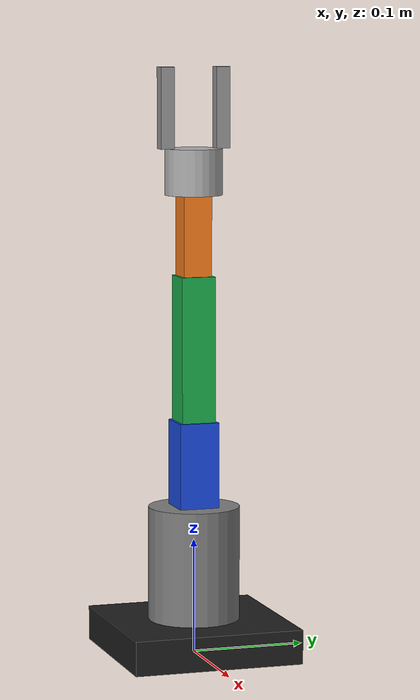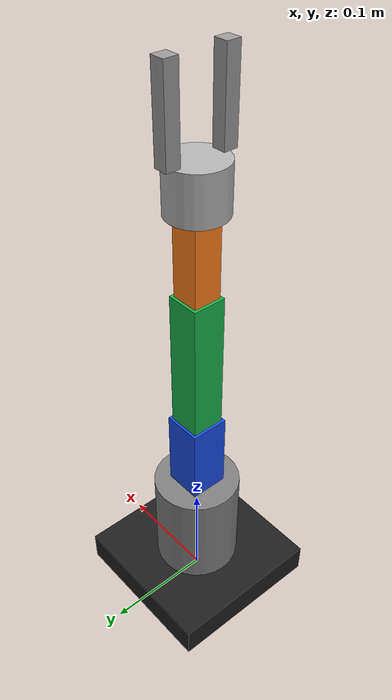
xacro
<?xml version="1.0"?>
<robot name="color_sorting_arm"
       xmlns:xacro="http://www.ros.org/wiki/xacro">

  <!-- ROBOT DIMENSIONS (metres)                 -->

  <xacro:property name="base_height" value="0.10"/>
  <xacro:property name="upper_arm_length" value="0.105"/>
  <xacro:property name="forearm_length" value="0.127"/>
  <xacro:property name="wrist_length" value="0.070"/>

  <!-- BASE LINK                                 -->

  <link name="base_link">
    <visual>
      <origin xyz="0 0 0.015" rpy="0 0 0"/>
      <geometry>
        <box size="0.15 0.15 0.03"/>
      </geometry>
      <material name="black">
        <color rgba="0.12 0.12 0.12 1"/>
      </material>
    </visual>
    <collision>
  <origin xyz="0 0 0.015" rpy="0 0 0"/>
  <geometry>
    <box size="0.15 0.15 0.03"/>
  </geometry>
</collision>
  </link>

  <!-- J1: BASE ROTATION                         -->

  <link name="base_rotation_link">
    <visual>
      <origin xyz="0 0 0.05" rpy="0 0 0"/>
      <geometry>
        <cylinder radius="0.04" length="0.10"/>
      </geometry>
      <material name="gray">
        <color rgba="0.5 0.5 0.5 1"/>
      </material>
    </visual>
    <collision>
  <origin xyz="0 0 0.05" rpy="0 0 0"/>
  <geometry>
    <cylinder radius="0.04" length="0.10"/>
  </geometry>
</collision>
  </link>

  <joint name="joint1" type="revolute">
    <parent link="base_link"/>
    <child link="base_rotation_link"/>

    <origin xyz="0 0 0.03" rpy="0 0 0"/>
    <axis xyz="0 0 1"/>

    <limit lower="-1.57"
           upper="1.57"
           effort="10"
           velocity="1"/>
  </joint>

  <!-- J2: SHOULDER                              -->

  <link name="upper_arm_link">
    <visual>
      <origin xyz="0 0 ${upper_arm_length / 2}"
              rpy="0 0 0"/>

      <geometry>
        <box size="0.035 0.035 ${upper_arm_length}"/>
      </geometry>

      <material name="blue">
        <color rgba="0.1 0.3 0.9 1"/>
      </material>
    </visual>
      <!-- ADD THIS COLLISION BLOCK -->
  <collision>
    <origin xyz="0 0 ${upper_arm_length / 2}"
            rpy="0 0 0"/>

    <geometry>
      <box size="0.035 0.035 ${upper_arm_length}"/>
    </geometry>
  </collision>
  </link>

  <joint name="joint2" type="revolute">
    <parent link="base_rotation_link"/>
    <child link="upper_arm_link"/>

    <origin xyz="0 0 ${base_height - 0.03}"
            rpy="0 0 0"/>

    <axis xyz="0 1 0"/>

    <limit lower="-1.57"
           upper="1.57"
           effort="10"
           velocity="1"/>
  </joint>

  <!-- J3: ELBOW                                 -->

  <link name="forearm_link">
    <visual>
      <origin xyz="0 0 ${forearm_length / 2}"
              rpy="0 0 0"/>

      <geometry>
        <box size="0.03 0.03 ${forearm_length}"/>
      </geometry>

      <material name="green">
        <color rgba="0.1 0.7 0.3 1"/>
      </material>
    </visual>
    <collision>
  <origin xyz="0 0 ${forearm_length / 2}" rpy="0 0 0"/>
  <geometry>
    <box size="0.03 0.03 ${forearm_length}"/>
  </geometry>
</collision>
  </link>

  <joint name="joint3" type="revolute">
    <parent link="upper_arm_link"/>
    <child link="forearm_link"/>

    <origin xyz="0 0 ${upper_arm_length}"
            rpy="0 0 0"/>

    <axis xyz="0 1 0"/>

    <limit lower="-1.57"
           upper="1.57"
           effort="10"
           velocity="1"/>
  </joint>

  <!-- J4: WRIST BENDING                         -->

  <link name="wrist_link">
    <visual>
      <origin xyz="0 0 ${wrist_length / 2}"
              rpy="0 0 0"/>

      <geometry>
        <box size="0.025 0.025 ${wrist_length}"/>
      </geometry>

      <material name="orange">
        <color rgba="1.0 0.5 0.1 1"/>
      </material>
    </visual>
    <collision>
  <origin xyz="0 0 ${wrist_length / 2}" rpy="0 0 0"/>
  <geometry>
    <box size="0.025 0.025 ${wrist_length}"/>
  </geometry>
</collision>
  </link>

  <joint name="joint4" type="revolute">
    <parent link="forearm_link"/>
    <child link="wrist_link"/>

    <origin xyz="0 0 ${forearm_length}"
            rpy="0 0 0"/>

    <axis xyz="0 1 0"/>

    <limit lower="-1.57"
           upper="1.57"
           effort="10"
           velocity="1"/>
  </joint>

  <!-- J5: GRIPPER ROTATION                      -->

  <link name="gripper_mount_link">
    <visual>
      <origin xyz="0 0 0.02" rpy="0 0 0"/>

      <geometry>
        <cylinder radius="0.025" length="0.04"/>
      </geometry>

      <material name="silver">
        <color rgba="0.7 0.7 0.7 1"/>
      </material>
    </visual>
    <collision>
  <origin xyz="0 0 0.02" rpy="0 0 0"/>
  <geometry>
    <cylinder radius="0.025" length="0.04"/>
  </geometry>
</collision>
  </link>

  <joint name="joint5" type="revolute">
    <parent link="wrist_link"/>
    <child link="gripper_mount_link"/>

    <origin xyz="0 0 ${wrist_length}"
            rpy="0 0 0"/>

    <axis xyz="0 0 1"/>

    <limit lower="-1.57"
           upper="1.57"
           effort="10"
           velocity="1"/>
  </joint>

  <!-- FIXED GRIPPER FINGER                      -->

  <link name="fixed_finger_link">
    <visual>
      <origin xyz="0 -0.025 0.055"
              rpy="0 0 0"/>

      <geometry>
        <box size="0.012 0.012 0.07"/>
      </geometry>

      <material name="gray_finger">
        <color rgba="0.6 0.6 0.6 1"/>
      </material>
    </visual>
    <collision>
  <origin xyz="0 -0.025 0.055" rpy="0 0 0"/>
  <geometry>
    <box size="0.012 0.012 0.07"/>
  </geometry>
</collision>
  </link>

  <joint name="fixed_finger_joint" type="fixed">
    <parent link="gripper_mount_link"/>
    <child link="fixed_finger_link"/>

    <origin xyz="0 0 0.02" rpy="0 0 0"/>
  </joint>

  <!-- J6: GRIPPER OPENING AND CLOSING           -->

  <link name="moving_finger_link">
    <visual>
      <origin xyz="0 0 0.035"
              rpy="0 0 0"/>

      <geometry>
        <box size="0.012 0.012 0.07"/>
      </geometry>

      <material name="gray_moving_finger">
        <color rgba="0.6 0.6 0.6 1"/>
      </material>
    </visual>
    <collision>
  <origin xyz="0 0 0.035" rpy="0 0 0"/>
  <geometry>
    <box size="0.012 0.012 0.07"/>
  </geometry>
</collision>
  </link>

  <joint name="joint6" type="prismatic">
    <parent link="gripper_mount_link"/>
    <child link="moving_finger_link"/>

    <origin xyz="0 0.025 0.04"
            rpy="0 0 0"/>

    <axis xyz="0 -1 0"/>

    <limit lower="0.0"
           upper="0.035"
           effort="10"
           velocity="0.05"/>
  </joint>

<!-- Simulated hardware for MoveIt testing -->
<ros2_control name="SimulatedArm" type="system">

  <hardware>
    <plugin>mock_components/GenericSystem</plugin>
  </hardware>

  <joint name="joint1">
    <command_interface name="position"/>
    <state_interface name="position"/>
    <state_interface name="velocity"/>
  </joint>

  <joint name="joint2">
    <command_interface name="position"/>
    <state_interface name="position"/>
    <state_interface name="velocity"/>
  </joint>

  <joint name="joint3">
    <command_interface name="position"/>
    <state_interface name="position"/>
    <state_interface name="velocity"/>
  </joint>

  <joint name="joint4">
    <command_interface name="position"/>
    <state_interface name="position"/>
    <state_interface name="velocity"/>
  </joint>

  <joint name="joint5">
    <command_interface name="position"/>
    <state_interface name="position"/>
    <state_interface name="velocity"/>
  </joint>

  <joint name="joint6">
    <command_interface name="position"/>
    <state_interface name="position"/>
    <state_interface name="velocity"/>
  </joint>

</ros2_control>
</robot>
